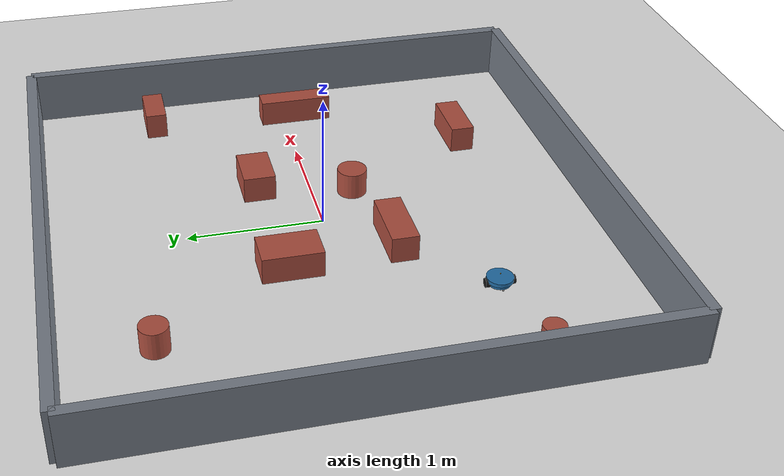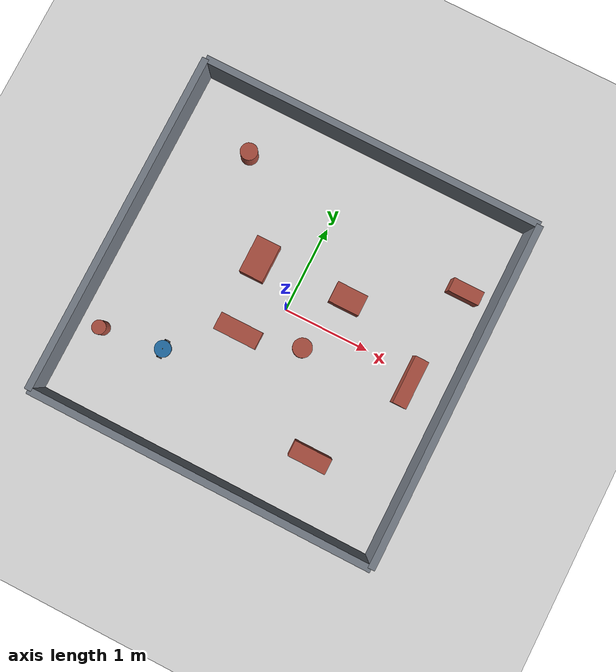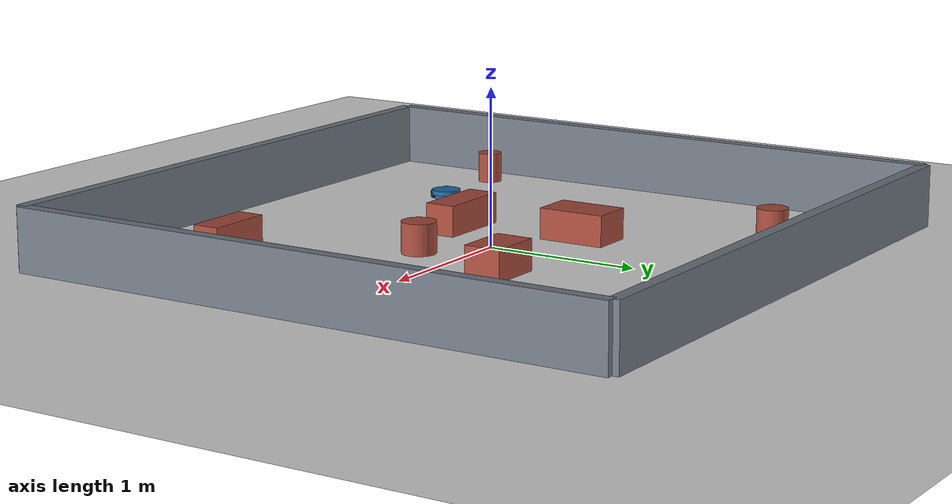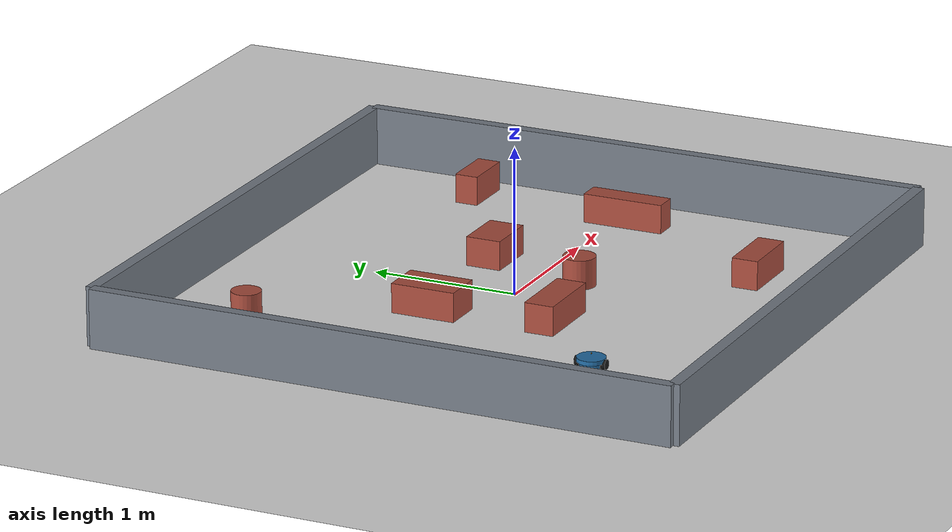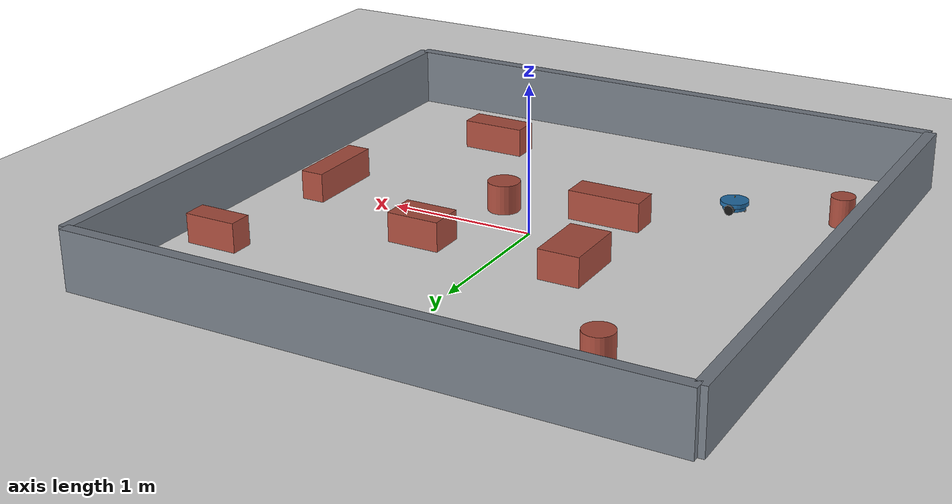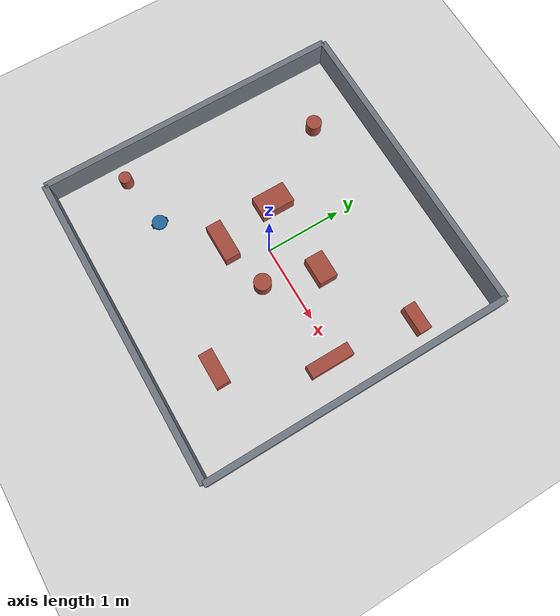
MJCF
<mujoco model="turtlebot_scene">
    <compiler angle="radian" autolimits="true"/>
    <option timestep="0.002" gravity="0 0 -9.81" integrator="implicitfast"/>

    <visual>
        <headlight ambient="0.35 0.35 0.35" diffuse="0.7 0.7 0.7"/>
    </visual>

    <default>
        <geom friction="1.2 0.05 0.01" condim="3"/>
    </default>

    <asset>
        <texture name="grid" type="2d" builtin="checker" rgb1="0.90 0.90 0.90" rgb2="0.82 0.82 0.82" width="256" height="256"/>
        <material name="mat_floor" texture="grid" texrepeat="8 8"/>
        <material name="mat_wall" rgba="0.45 0.48 0.52 1"/>
        <material name="mat_obs" rgba="0.66 0.30 0.24 1"/>
        <material name="mat_bot" rgba="0.13 0.42 0.64 1"/>
        <material name="mat_wheel" rgba="0.08 0.08 0.08 1"/>
    </asset>

    <worldbody>
        <light name="sun" pos="0 0 3" dir="0 0 -1" diffuse="0.95 0.95 0.95" castshadow="false"/>

        <geom name="floor" type="plane" pos="0 0 0" size="5 5 0.1" material="mat_floor"/>

        <!-- Thin boundary walls forming a 2m x 2m environment. -->
        <geom name="wall_north" type="box" pos="0 2 0.2" size="2 0.04 0.2" material="mat_wall"/>
        <geom name="wall_south" type="box" pos="0 -2 0.2" size="2 0.04 0.2" material="mat_wall"/>
        <geom name="wall_east" type="box" pos="2 0 0.2" size="0.04 2 0.2" material="mat_wall"/>
        <geom name="wall_west" type="box" pos="-2 0 0.2" size="0.04 2 0.2" material="mat_wall"/>

        <!-- Static obstacles -->
        <geom name="obs_a" type="box" pos="0.55 0.40 0.10" size="0.18 0.12 0.1" material="mat_obs"/>
        <geom name="obs_b" type="box" pos="-0.50 0.35 0.10" size="0.14 0.22 0.1" material="mat_obs"/>
        <geom name="obs_c" type="box" pos="-0.35 -0.45 0.10" size="0.25 0.10 0.1" material="mat_obs"/>
        <geom name="obs_d" type="cylinder" pos="0.35 -0.30 0.10" size="0.11 0.1" material="mat_obs"/>
        <geom name="obs_e" type="box" pos="1.65 1.05 0.10" size="0.18 0.08 0.1" material="mat_obs"/>
        <geom name="obs_f" type="cylinder" pos="-1.15 1.35 0.10" size="0.10 0.1" material="mat_obs"/>
        <geom name="obs_g" type="box" pos="0.95 -1.30 0.10" size="0.22 0.09 0.1" material="mat_obs"/>
        <geom name="obs_h" type="cylinder" pos="-1.70 -1.10 0.10" size="0.08 0.1" material="mat_obs"/>
        <geom name="obs_i" type="box" pos="1.55 -0.10 0.10" size="0.08 0.28 0.1" material="mat_obs"/>

        <body name="turtlebot" pos="-1 -1 0.036">
            <freejoint name="tb_free"/>
            <inertial pos="0 0 0" mass="2.2" diaginertia="0.02 0.02 0.03"/>

            <!-- Keep one clean collision chassis + one visual shell for easier debugging. -->
            <geom name="tb_chassis_col" type="cylinder" size="0.078 0.020" material="mat_bot" contype="0" conaffinity="0"/>
            <geom name="tb_chassis_vis" type="cylinder" size="0.095 0.014" pos="0 0 0.024" material="mat_bot" contype="0" conaffinity="0"/>

            <!-- Add a front and rear caster so the robot base doesn't tip over. -->
            <geom name="tb_caster_front" type="sphere" pos="0.075 0 -0.025" size="0.008" mass="0.02" friction="0.02 0.001 0.0001" condim="3"/>
            <geom name="tb_caster_back" type="sphere" pos="-0.075 0 -0.025" size="0.008" mass="0.02" friction="0.02 0.001 0.0001" condim="3"/>

            <body name="tb_left_wheel" pos="0 0.09 0">
                <joint name="tb_left_wheel_joint" type="hinge" axis="0 1 0" damping="0.05" frictionloss="0.01"/>
                <geom name="tb_left_wheel_geom" type="cylinder" size="0.033 0.016" euler="1.57079632679 0 0" material="mat_wheel" friction="1.8 0.02 0.001" condim="6"/>
            </body>

            <body name="tb_right_wheel" pos="0 -0.09 0">
                <joint name="tb_right_wheel_joint" type="hinge" axis="0 1 0" damping="0.05" frictionloss="0.01"/>
                <geom name="tb_right_wheel_geom" type="cylinder" size="0.033 0.016" euler="1.57079632679 0 0" material="mat_wheel" friction="1.8 0.02 0.001" condim="6"/>
            </body>

            <site name="tb_base_site" pos="0 0 0" size="0.005" rgba="0 1 0 1"/>
            <body name="tb_laser_head" pos="0 0 0.06">
                <site name="tb_laser_mount" pos="0 0 0" size="0.004" rgba="1 0.6 0 1"/>
                <site name="tb_laser_00" pos="0 0 0" zaxis="0.000000000 -1.000000000 0" size="0.002" rgba="1 0.2 0.2 0.2"/>
                <site name="tb_laser_01" pos="0 0 0" zaxis="0.052335956 -0.998629535 0" size="0.002" rgba="1 0.2 0.2 0.2"/>
                <site name="tb_laser_02" pos="0 0 0" zaxis="0.104528463 -0.994521895 0" size="0.002" rgba="1 0.2 0.2 0.2"/>
                <site name="tb_laser_03" pos="0 0 0" zaxis="0.156434465 -0.987688341 0" size="0.002" rgba="1 0.2 0.2 0.2"/>
                <site name="tb_laser_04" pos="0 0 0" zaxis="0.207911691 -0.978147601 0" size="0.002" rgba="1 0.2 0.2 0.2"/>
                <site name="tb_laser_05" pos="0 0 0" zaxis="0.258819045 -0.965925826 0" size="0.002" rgba="1 0.2 0.2 0.2"/>
                <site name="tb_laser_06" pos="0 0 0" zaxis="0.309016994 -0.951056516 0" size="0.002" rgba="1 0.2 0.2 0.2"/>
                <site name="tb_laser_07" pos="0 0 0" zaxis="0.358367950 -0.933580426 0" size="0.002" rgba="1 0.2 0.2 0.2"/>
                <site name="tb_laser_08" pos="0 0 0" zaxis="0.406736643 -0.913545458 0" size="0.002" rgba="1 0.2 0.2 0.2"/>
                <site name="tb_laser_09" pos="0 0 0" zaxis="0.453990500 -0.891006524 0" size="0.002" rgba="1 0.2 0.2 0.2"/>
                <site name="tb_laser_10" pos="0 0 0" zaxis="0.500000000 -0.866025404 0" size="0.002" rgba="1 0.2 0.2 0.2"/>
                <site name="tb_laser_11" pos="0 0 0" zaxis="0.544639035 -0.838670568 0" size="0.002" rgba="1 0.2 0.2 0.2"/>
                <site name="tb_laser_12" pos="0 0 0" zaxis="0.587785252 -0.809016994 0" size="0.002" rgba="1 0.2 0.2 0.2"/>
                <site name="tb_laser_13" pos="0 0 0" zaxis="0.629320391 -0.777145961 0" size="0.002" rgba="1 0.2 0.2 0.2"/>
                <site name="tb_laser_14" pos="0 0 0" zaxis="0.669130606 -0.743144825 0" size="0.002" rgba="1 0.2 0.2 0.2"/>
                <site name="tb_laser_15" pos="0 0 0" zaxis="0.707106781 -0.707106781 0" size="0.002" rgba="1 0.2 0.2 0.2"/>
                <site name="tb_laser_16" pos="0 0 0" zaxis="0.743144825 -0.669130606 0" size="0.002" rgba="1 0.2 0.2 0.2"/>
                <site name="tb_laser_17" pos="0 0 0" zaxis="0.777145961 -0.629320391 0" size="0.002" rgba="1 0.2 0.2 0.2"/>
                <site name="tb_laser_18" pos="0 0 0" zaxis="0.809016994 -0.587785252 0" size="0.002" rgba="1 0.2 0.2 0.2"/>
                <site name="tb_laser_19" pos="0 0 0" zaxis="0.838670568 -0.544639035 0" size="0.002" rgba="1 0.2 0.2 0.2"/>
                <site name="tb_laser_20" pos="0 0 0" zaxis="0.866025404 -0.500000000 0" size="0.002" rgba="1 0.2 0.2 0.2"/>
                <site name="tb_laser_21" pos="0 0 0" zaxis="0.891006524 -0.453990500 0" size="0.002" rgba="1 0.2 0.2 0.2"/>
                <site name="tb_laser_22" pos="0 0 0" zaxis="0.913545458 -0.406736643 0" size="0.002" rgba="1 0.2 0.2 0.2"/>
                <site name="tb_laser_23" pos="0 0 0" zaxis="0.933580426 -0.358367950 0" size="0.002" rgba="1 0.2 0.2 0.2"/>
                <site name="tb_laser_24" pos="0 0 0" zaxis="0.951056516 -0.309016994 0" size="0.002" rgba="1 0.2 0.2 0.2"/>
                <site name="tb_laser_25" pos="0 0 0" zaxis="0.965925826 -0.258819045 0" size="0.002" rgba="1 0.2 0.2 0.2"/>
                <site name="tb_laser_26" pos="0 0 0" zaxis="0.978147601 -0.207911691 0" size="0.002" rgba="1 0.2 0.2 0.2"/>
                <site name="tb_laser_27" pos="0 0 0" zaxis="0.987688341 -0.156434465 0" size="0.002" rgba="1 0.2 0.2 0.2"/>
                <site name="tb_laser_28" pos="0 0 0" zaxis="0.994521895 -0.104528463 0" size="0.002" rgba="1 0.2 0.2 0.2"/>
                <site name="tb_laser_29" pos="0 0 0" zaxis="0.998629535 -0.052335956 0" size="0.002" rgba="1 0.2 0.2 0.2"/>
                <site name="tb_laser_30" pos="0 0 0" zaxis="1.000000000 0.000000000 0" size="0.002" rgba="1 0.2 0.2 0.2"/>
                <site name="tb_laser_31" pos="0 0 0" zaxis="0.998629535 0.052335956 0" size="0.002" rgba="1 0.2 0.2 0.2"/>
                <site name="tb_laser_32" pos="0 0 0" zaxis="0.994521895 0.104528463 0" size="0.002" rgba="1 0.2 0.2 0.2"/>
                <site name="tb_laser_33" pos="0 0 0" zaxis="0.987688341 0.156434465 0" size="0.002" rgba="1 0.2 0.2 0.2"/>
                <site name="tb_laser_34" pos="0 0 0" zaxis="0.978147601 0.207911691 0" size="0.002" rgba="1 0.2 0.2 0.2"/>
                <site name="tb_laser_35" pos="0 0 0" zaxis="0.965925826 0.258819045 0" size="0.002" rgba="1 0.2 0.2 0.2"/>
                <site name="tb_laser_36" pos="0 0 0" zaxis="0.951056516 0.309016994 0" size="0.002" rgba="1 0.2 0.2 0.2"/>
                <site name="tb_laser_37" pos="0 0 0" zaxis="0.933580426 0.358367950 0" size="0.002" rgba="1 0.2 0.2 0.2"/>
                <site name="tb_laser_38" pos="0 0 0" zaxis="0.913545458 0.406736643 0" size="0.002" rgba="1 0.2 0.2 0.2"/>
                <site name="tb_laser_39" pos="0 0 0" zaxis="0.891006524 0.453990500 0" size="0.002" rgba="1 0.2 0.2 0.2"/>
                <site name="tb_laser_40" pos="0 0 0" zaxis="0.866025404 0.500000000 0" size="0.002" rgba="1 0.2 0.2 0.2"/>
                <site name="tb_laser_41" pos="0 0 0" zaxis="0.838670568 0.544639035 0" size="0.002" rgba="1 0.2 0.2 0.2"/>
                <site name="tb_laser_42" pos="0 0 0" zaxis="0.809016994 0.587785252 0" size="0.002" rgba="1 0.2 0.2 0.2"/>
                <site name="tb_laser_43" pos="0 0 0" zaxis="0.777145961 0.629320391 0" size="0.002" rgba="1 0.2 0.2 0.2"/>
                <site name="tb_laser_44" pos="0 0 0" zaxis="0.743144825 0.669130606 0" size="0.002" rgba="1 0.2 0.2 0.2"/>
                <site name="tb_laser_45" pos="0 0 0" zaxis="0.707106781 0.707106781 0" size="0.002" rgba="1 0.2 0.2 0.2"/>
                <site name="tb_laser_46" pos="0 0 0" zaxis="0.669130606 0.743144825 0" size="0.002" rgba="1 0.2 0.2 0.2"/>
                <site name="tb_laser_47" pos="0 0 0" zaxis="0.629320391 0.777145961 0" size="0.002" rgba="1 0.2 0.2 0.2"/>
                <site name="tb_laser_48" pos="0 0 0" zaxis="0.587785252 0.809016994 0" size="0.002" rgba="1 0.2 0.2 0.2"/>
                <site name="tb_laser_49" pos="0 0 0" zaxis="0.544639035 0.838670568 0" size="0.002" rgba="1 0.2 0.2 0.2"/>
                <site name="tb_laser_50" pos="0 0 0" zaxis="0.500000000 0.866025404 0" size="0.002" rgba="1 0.2 0.2 0.2"/>
                <site name="tb_laser_51" pos="0 0 0" zaxis="0.453990500 0.891006524 0" size="0.002" rgba="1 0.2 0.2 0.2"/>
                <site name="tb_laser_52" pos="0 0 0" zaxis="0.406736643 0.913545458 0" size="0.002" rgba="1 0.2 0.2 0.2"/>
                <site name="tb_laser_53" pos="0 0 0" zaxis="0.358367950 0.933580426 0" size="0.002" rgba="1 0.2 0.2 0.2"/>
                <site name="tb_laser_54" pos="0 0 0" zaxis="0.309016994 0.951056516 0" size="0.002" rgba="1 0.2 0.2 0.2"/>
                <site name="tb_laser_55" pos="0 0 0" zaxis="0.258819045 0.965925826 0" size="0.002" rgba="1 0.2 0.2 0.2"/>
                <site name="tb_laser_56" pos="0 0 0" zaxis="0.207911691 0.978147601 0" size="0.002" rgba="1 0.2 0.2 0.2"/>
                <site name="tb_laser_57" pos="0 0 0" zaxis="0.156434465 0.987688341 0" size="0.002" rgba="1 0.2 0.2 0.2"/>
                <site name="tb_laser_58" pos="0 0 0" zaxis="0.104528463 0.994521895 0" size="0.002" rgba="1 0.2 0.2 0.2"/>
                <site name="tb_laser_59" pos="0 0 0" zaxis="0.052335956 0.998629535 0" size="0.002" rgba="1 0.2 0.2 0.2"/>
                <site name="tb_laser_60" pos="0 0 0" zaxis="-0.000000000 1.000000000 0" size="0.002" rgba="1 0.2 0.2 0.2"/>
            </body>
        </body>
    </worldbody>

    <actuator>
        <velocity name="tb_left_wheel_act" joint="tb_left_wheel_joint" kv="2.0" ctrlrange="-20 20" forcerange="-3 3"/>
        <velocity name="tb_right_wheel_act" joint="tb_right_wheel_joint" kv="2.0" ctrlrange="-20 20" forcerange="-3 3"/>
    </actuator>

    <sensor>
        <framepos name="tb_base_pos" objtype="site" objname="tb_base_site"/>
        <framequat name="tb_base_quat" objtype="site" objname="tb_base_site"/>
        <rangefinder name="tb_laser_00" site="tb_laser_00"/>
        <rangefinder name="tb_laser_01" site="tb_laser_01"/>
        <rangefinder name="tb_laser_02" site="tb_laser_02"/>
        <rangefinder name="tb_laser_03" site="tb_laser_03"/>
        <rangefinder name="tb_laser_04" site="tb_laser_04"/>
        <rangefinder name="tb_laser_05" site="tb_laser_05"/>
        <rangefinder name="tb_laser_06" site="tb_laser_06"/>
        <rangefinder name="tb_laser_07" site="tb_laser_07"/>
        <rangefinder name="tb_laser_08" site="tb_laser_08"/>
        <rangefinder name="tb_laser_09" site="tb_laser_09"/>
        <rangefinder name="tb_laser_10" site="tb_laser_10"/>
        <rangefinder name="tb_laser_11" site="tb_laser_11"/>
        <rangefinder name="tb_laser_12" site="tb_laser_12"/>
        <rangefinder name="tb_laser_13" site="tb_laser_13"/>
        <rangefinder name="tb_laser_14" site="tb_laser_14"/>
        <rangefinder name="tb_laser_15" site="tb_laser_15"/>
        <rangefinder name="tb_laser_16" site="tb_laser_16"/>
        <rangefinder name="tb_laser_17" site="tb_laser_17"/>
        <rangefinder name="tb_laser_18" site="tb_laser_18"/>
        <rangefinder name="tb_laser_19" site="tb_laser_19"/>
        <rangefinder name="tb_laser_20" site="tb_laser_20"/>
        <rangefinder name="tb_laser_21" site="tb_laser_21"/>
        <rangefinder name="tb_laser_22" site="tb_laser_22"/>
        <rangefinder name="tb_laser_23" site="tb_laser_23"/>
        <rangefinder name="tb_laser_24" site="tb_laser_24"/>
        <rangefinder name="tb_laser_25" site="tb_laser_25"/>
        <rangefinder name="tb_laser_26" site="tb_laser_26"/>
        <rangefinder name="tb_laser_27" site="tb_laser_27"/>
        <rangefinder name="tb_laser_28" site="tb_laser_28"/>
        <rangefinder name="tb_laser_29" site="tb_laser_29"/>
        <rangefinder name="tb_laser_30" site="tb_laser_30"/>
        <rangefinder name="tb_laser_31" site="tb_laser_31"/>
        <rangefinder name="tb_laser_32" site="tb_laser_32"/>
        <rangefinder name="tb_laser_33" site="tb_laser_33"/>
        <rangefinder name="tb_laser_34" site="tb_laser_34"/>
        <rangefinder name="tb_laser_35" site="tb_laser_35"/>
        <rangefinder name="tb_laser_36" site="tb_laser_36"/>
        <rangefinder name="tb_laser_37" site="tb_laser_37"/>
        <rangefinder name="tb_laser_38" site="tb_laser_38"/>
        <rangefinder name="tb_laser_39" site="tb_laser_39"/>
        <rangefinder name="tb_laser_40" site="tb_laser_40"/>
        <rangefinder name="tb_laser_41" site="tb_laser_41"/>
        <rangefinder name="tb_laser_42" site="tb_laser_42"/>
        <rangefinder name="tb_laser_43" site="tb_laser_43"/>
        <rangefinder name="tb_laser_44" site="tb_laser_44"/>
        <rangefinder name="tb_laser_45" site="tb_laser_45"/>
        <rangefinder name="tb_laser_46" site="tb_laser_46"/>
        <rangefinder name="tb_laser_47" site="tb_laser_47"/>
        <rangefinder name="tb_laser_48" site="tb_laser_48"/>
        <rangefinder name="tb_laser_49" site="tb_laser_49"/>
        <rangefinder name="tb_laser_50" site="tb_laser_50"/>
        <rangefinder name="tb_laser_51" site="tb_laser_51"/>
        <rangefinder name="tb_laser_52" site="tb_laser_52"/>
        <rangefinder name="tb_laser_53" site="tb_laser_53"/>
        <rangefinder name="tb_laser_54" site="tb_laser_54"/>
        <rangefinder name="tb_laser_55" site="tb_laser_55"/>
        <rangefinder name="tb_laser_56" site="tb_laser_56"/>
        <rangefinder name="tb_laser_57" site="tb_laser_57"/>
        <rangefinder name="tb_laser_58" site="tb_laser_58"/>
        <rangefinder name="tb_laser_59" site="tb_laser_59"/>
        <rangefinder name="tb_laser_60" site="tb_laser_60"/>
    </sensor>

    <keyframe>
        <key name="home" qpos="-1 -1 0.036 1 0 0 0 0 0" ctrl="0 0"/>
    </keyframe>
</mujoco>
